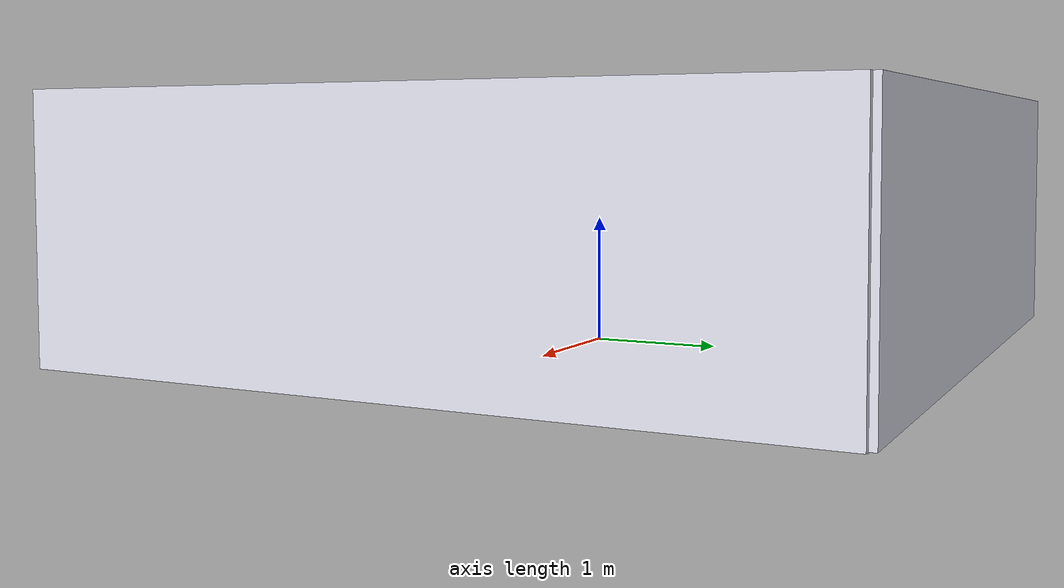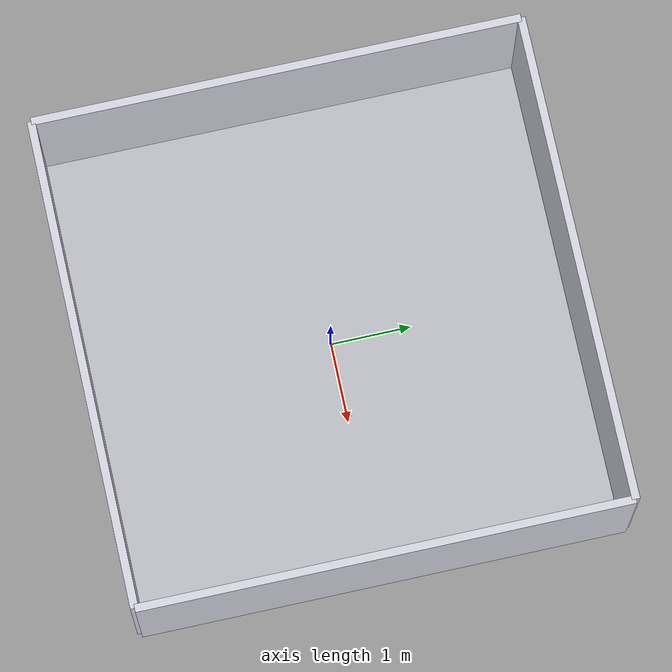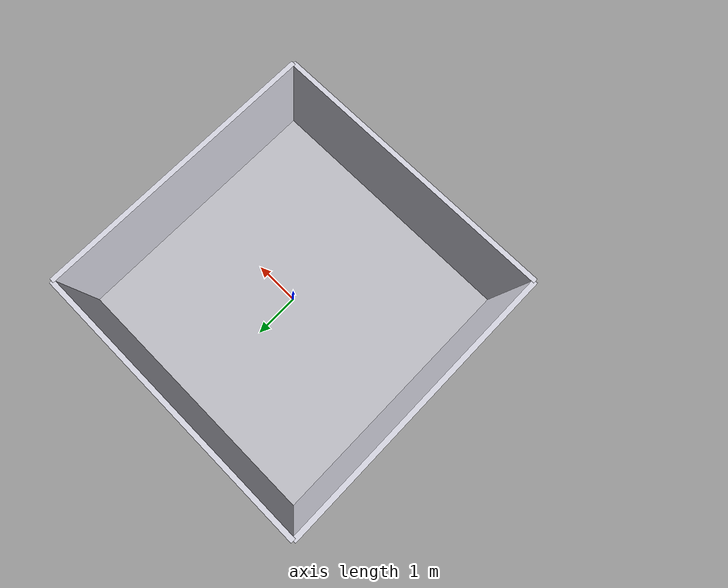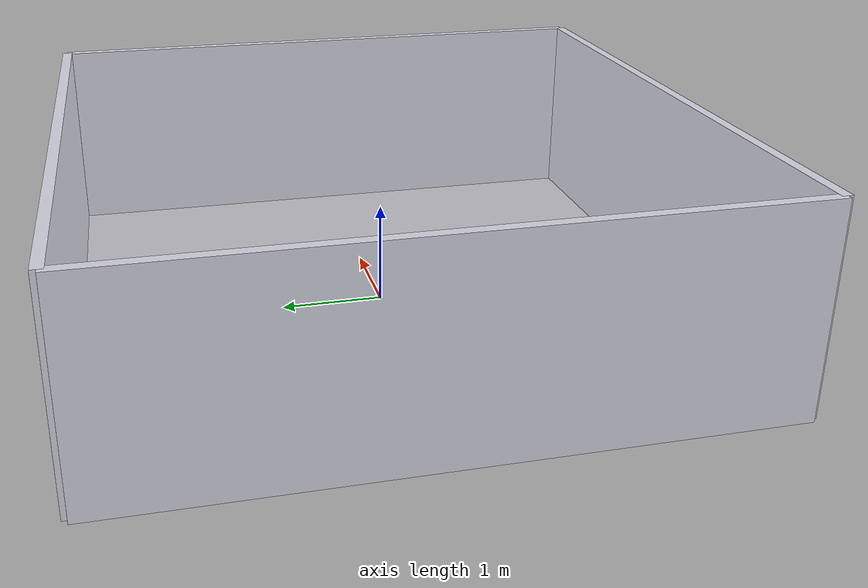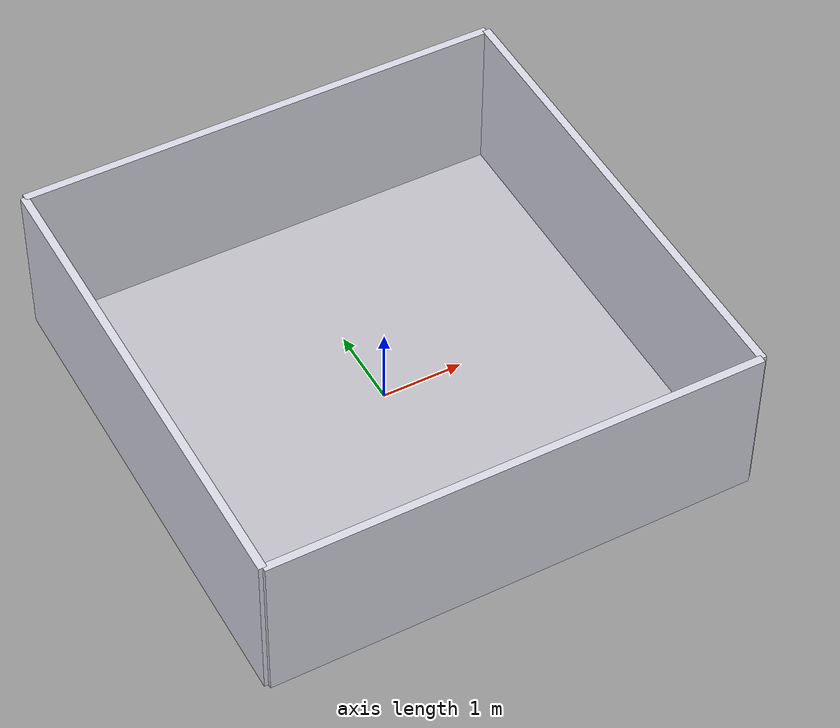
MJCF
<?xml version="1.0" ?>
<mujoco model="empty_room">
  <compiler angle="radian" autolimits="true"/>
  <option timestep="0.002" gravity="0 0 -9.81"/>
  <visual>
    <global offwidth="64" offheight="64"/>
  </visual>
  <default>
    <geom contype="1" conaffinity="1" friction="1 0.005 0.0001"/>
  </default>
  <asset>
    <texture name="grid" type="2d" builtin="checker" rgb1="0.2 0.3 0.4"
             rgb2="0.8 0.8 0.8" width="256" height="256"/>
    <material name="grid_mat" texture="grid" texrepeat="4 4" reflectance="0.1"/>
  </asset>
  <worldbody>
    <light pos="0 0 3" dir="0 0 -1" diffuse="0.8 0.8 0.8"/>
    <geom name="floor" type="plane" size="3 3 0.05" material="grid_mat"
          rgba="0.75 0.75 0.78 1"/>
    <geom name="wall_n" type="box" pos="0 3 1" size="3 0.05 1" rgba="0.85 0.85 0.9 1"/>
    <geom name="wall_s" type="box" pos="0 -3 1" size="3 0.05 1" rgba="0.85 0.85 0.9 1"/>
    <geom name="wall_e" type="box" pos="3 0 1" size="0.05 3 1" rgba="0.85 0.85 0.9 1"/>
    <geom name="wall_w" type="box" pos="-3 0 1" size="0.05 3 1" rgba="0.85 0.85 0.9 1"/>
  </worldbody>
</mujoco>
